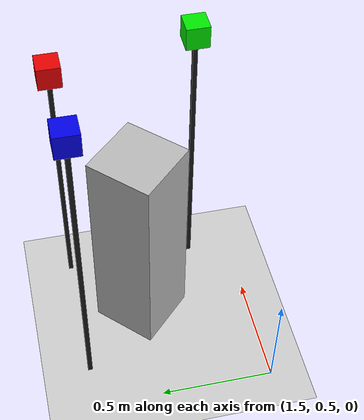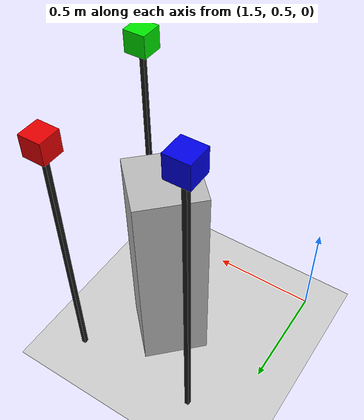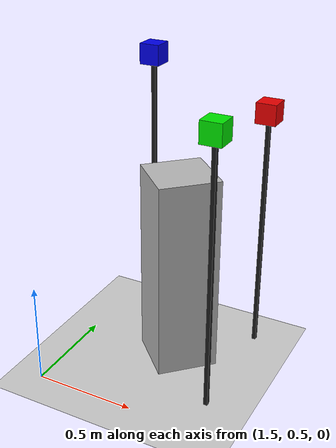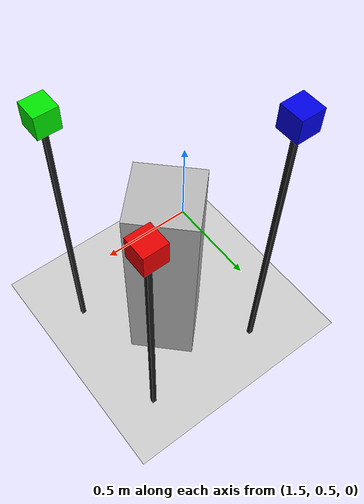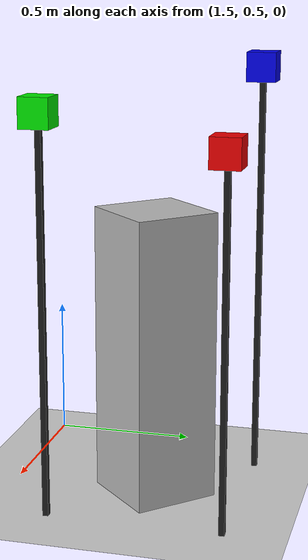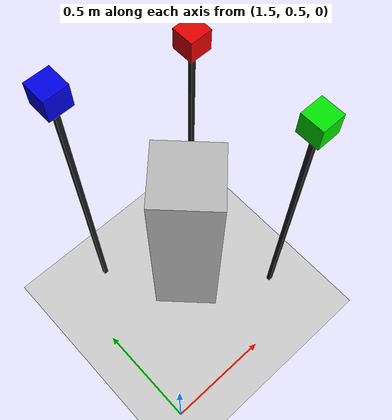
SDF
<?xml version="1.0" ?>
<sdf version="1.5">
  <world name="default">
    <include>
      <uri>model://ground_plane</uri>
    </include>

    <include>
      <uri>model://sun</uri>
    </include>

    <model name="block_red">
      <pose>2.3 1.3 1.251 0 0 0</pose>
      <link name="link">
        <collision name="collision">
          <geometry>
            <box>
              <size>0.1 0.1 0.1</size>
            </box>
          </geometry>
        </collision>
        <visual name="visual">
          <geometry>
            <box>
              <size>0.1 0.1 0.1</size>
            </box>
          </geometry>
          <material>
            <diffuse>0.9 0 0 1</diffuse>
          </material>
        </visual>
      </link>
    </model>

    <model name="block_green">
      <pose>2.3 0.7 1.351 0 0 0</pose>
      <link name="link">
        <collision name="collision">
          <geometry>
            <box>
              <size>0.1 0.1 0.1</size>
            </box>
          </geometry>
        </collision>
        <visual name="visual">
          <geometry>
            <box>
              <size>0.1 0.1 0.1</size>
            </box>
          </geometry>
          <material>
            <diffuse>0 0.9 0 1</diffuse>
          </material>
        </visual>
      </link>
    </model>

    <model name="block_blue">
      <pose>1.7 1.3 1.451 0 0 0</pose>
      <link name="link">
        <collision name="collision">
          <geometry>
            <box>
              <size>0.1 0.1 0.1</size>
            </box>
          </geometry>
        </collision>
        <visual name="visual">
          <geometry>
            <box>
              <size>0.1 0.1 0.1</size>
            </box>
          </geometry>
          <material>
            <diffuse>0 0 0.9 1</diffuse>
          </material>
        </visual>
      </link>
    </model>

    <model name="robot_pedestal">
      <static>true</static>
      <pose>2 1 0.5 0 0 0.785398</pose>
      <link name="link">
        <collision name="collision">
          <geometry>
            <box>
              <size>0.3 0.3 1.0</size>
            </box>
          </geometry>
        </collision>
        <visual name="visual">
          <geometry>
            <box>
              <size>0.3 0.3 1.0</size>
            </box>
          </geometry>
        </visual>
      </link>
    </model>

    <model name="stand1">
      <static>true</static>
      <pose>2.3 1.3 0.6 0 0 0</pose>
      <link name="link">
        <collision name="collision">
          <geometry>
            <box>
              <size>0.02 0.02 1.2</size>
            </box>
          </geometry>
        </collision>
        <visual name="visual">
          <geometry>
            <box>
              <size>0.02 0.02 1.2</size>
            </box>
          </geometry>
          <material>
            <diffuse>0.1 0.1 0.1 1</diffuse>
          </material>
        </visual>
      </link>
    </model>

    <model name="stand2">
      <static>true</static>
      <pose>2.3 0.7 0.65 0 0 0</pose>
      <link name="link">
        <collision name="collision">
          <geometry>
            <box>
              <size>0.02 0.02 1.3</size>
            </box>
          </geometry>
        </collision>
        <visual name="visual">
          <geometry>
            <box>
              <size>0.02 0.02 1.3</size>
            </box>
          </geometry>
          <material>
            <diffuse>0.1 0.1 0.1 1</diffuse>
          </material>
        </visual>
      </link>
    </model>

    <model name="stand3">
      <static>true</static>
      <pose>1.7 1.3 0.7 0 0 0</pose>
      <link name="link">
        <collision name="collision">
          <geometry>
            <box>
              <size>0.02 0.02 1.4</size>
            </box>
          </geometry>
        </collision>
        <visual name="visual">
          <geometry>
            <box>
              <size>0.02 0.02 1.4</size>
            </box>
          </geometry>
          <material>
            <diffuse>0.1 0.1 0.1 1</diffuse>
          </material>
        </visual>
      </link>
    </model>

  </world>
</sdf>
